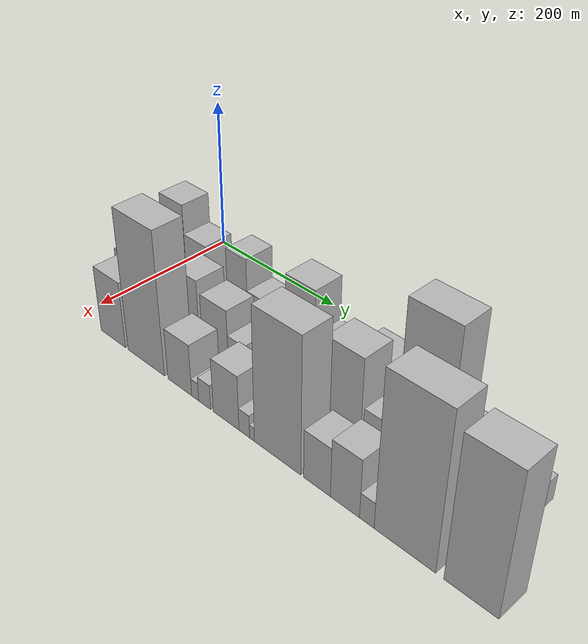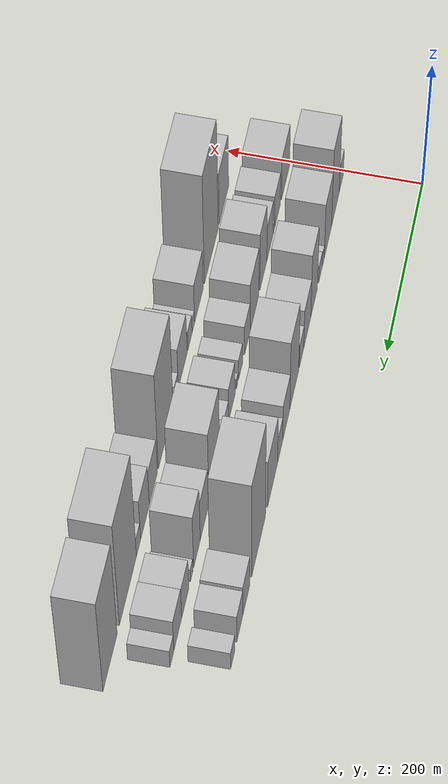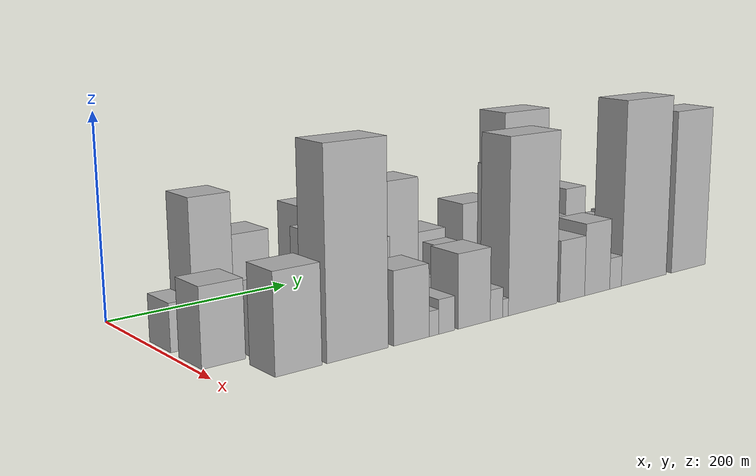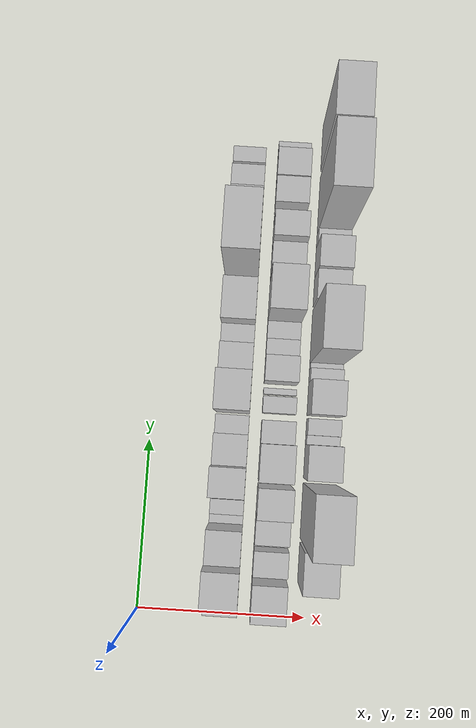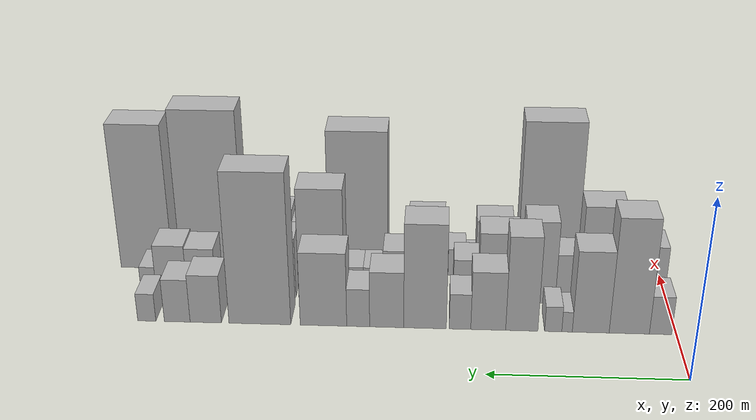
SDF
<sdf version="1.6">
 <world name="default">
  <model name="building_18">
   <static>1</static>
   <pose>100.0000 16.7724 0 0.000000 0.000000 0.000000</pose>
   <link name="link">
    <pose>0 0 22.50 0 0 0</pose>
    <collision name="collision"><geometry><box><size>40.0000 22.9341 45.0000</size></box></geometry></collision>
    <visual name="visual">
     <cast_shadows>0</cast_shadows>
     <geometry><box><size>40.0000 22.9341 45.0000</size></box></geometry>
     <material>
      <script>
       <uri>model://HANNAS_wall/materials/scripts</uri>
       <uri>model://HANNAS_wall/materials/textures</uri>
       <name>vrc/HANNAS_wall</name>
      </script>
     </material>
    </visual>
   </link>
  </model>
  <model name="building_19">
   <static>1</static>
   <pose>100.0000 48.9678 0 0.000000 0.000000 0.000000</pose>
   <link name="link">
    <pose>0 0 67.50 0 0 0</pose>
    <collision name="collision"><geometry><box><size>40.0000 41.4567 135.0000</size></box></geometry></collision>
    <visual name="visual">
     <cast_shadows>0</cast_shadows>
     <geometry><box><size>40.0000 41.4567 135.0000</size></box></geometry>
     <material>
      <script>
       <uri>model://HANNAS_wall/materials/scripts</uri>
       <uri>model://HANNAS_wall/materials/textures</uri>
       <name>vrc/HANNAS_wall</name>
      </script>
     </material>
    </visual>
   </link>
  </model>
  <model name="building_20">
   <static>1</static>
   <pose>100.0000 88.7517 0 0.000000 0.000000 0.000000</pose>
   <link name="link">
    <pose>0 0 48.00 0 0 0</pose>
    <collision name="collision"><geometry><box><size>40.0000 38.1110 96.0000</size></box></geometry></collision>
    <visual name="visual">
     <cast_shadows>0</cast_shadows>
     <geometry><box><size>40.0000 38.1110 96.0000</size></box></geometry>
     <material>
      <script>
       <uri>model://HANNAS_wall/materials/scripts</uri>
       <uri>model://HANNAS_wall/materials/textures</uri>
       <name>vrc/HANNAS_wall</name>
      </script>
     </material>
    </visual>
   </link>
  </model>
  <model name="building_21">
   <static>1</static>
   <pose>100.0000 113.2145 0 0.000000 0.000000 0.000000</pose>
   <link name="link">
    <pose>0 0 12.00 0 0 0</pose>
    <collision name="collision"><geometry><box><size>40.0000 10.8146 24.0000</size></box></geometry></collision>
    <visual name="visual">
     <cast_shadows>0</cast_shadows>
     <geometry><box><size>40.0000 10.8146 24.0000</size></box></geometry>
     <material>
      <script>
       <uri>model://HANNAS_wall/materials/scripts</uri>
       <uri>model://HANNAS_wall/materials/textures</uri>
       <name>vrc/HANNAS_wall</name>
      </script>
     </material>
    </visual>
   </link>
  </model>
  <model name="building_22">
   <static>1</static>
   <pose>100.0000 127.5079 0 0.000000 0.000000 0.000000</pose>
   <link name="link">
    <pose>0 0 15.00 0 0 0</pose>
    <collision name="collision"><geometry><box><size>40.0000 17.7722 30.0000</size></box></geometry></collision>
    <visual name="visual">
     <cast_shadows>0</cast_shadows>
     <geometry><box><size>40.0000 17.7722 30.0000</size></box></geometry>
     <material>
      <script>
       <uri>model://HANNAS_wall/materials/scripts</uri>
       <uri>model://HANNAS_wall/materials/textures</uri>
       <name>vrc/HANNAS_wall</name>
      </script>
     </material>
    </visual>
   </link>
  </model>
  <model name="building_23">
   <static>1</static>
   <pose>100.0000 160.1324 0 0.000000 0.000000 0.000000</pose>
   <link name="link">
    <pose>0 0 55.50 0 0 0</pose>
    <collision name="collision"><geometry><box><size>40.0000 33.4768 111.0000</size></box></geometry></collision>
    <visual name="visual">
     <cast_shadows>0</cast_shadows>
     <geometry><box><size>40.0000 33.4768 111.0000</size></box></geometry>
     <material>
      <script>
       <uri>model://HANNAS_wall/materials/scripts</uri>
       <uri>model://HANNAS_wall/materials/textures</uri>
       <name>vrc/HANNAS_wall</name>
      </script>
     </material>
    </visual>
   </link>
  </model>
  <model name="building_24">
   <static>1</static>
   <pose>100.0000 195.0404 0 0.000000 0.000000 0.000000</pose>
   <link name="link">
    <pose>0 0 34.50 0 0 0</pose>
    <collision name="collision"><geometry><box><size>40.0000 36.3392 69.0000</size></box></geometry></collision>
    <visual name="visual">
     <cast_shadows>0</cast_shadows>
     <geometry><box><size>40.0000 36.3392 69.0000</size></box></geometry>
     <material>
      <script>
       <uri>model://HANNAS_wall/materials/scripts</uri>
       <uri>model://HANNAS_wall/materials/textures</uri>
       <name>vrc/HANNAS_wall</name>
      </script>
     </material>
    </visual>
   </link>
  </model>
  <model name="building_25">
   <static>1</static>
   <pose>100.0000 224.4524 0 0.000000 0.000000 0.000000</pose>
   <link name="link">
    <pose>0 0 21.00 0 0 0</pose>
    <collision name="collision"><geometry><box><size>40.0000 22.4849 42.0000</size></box></geometry></collision>
    <visual name="visual">
     <cast_shadows>0</cast_shadows>
     <geometry><box><size>40.0000 22.4849 42.0000</size></box></geometry>
     <material>
      <script>
       <uri>model://HANNAS_wall/materials/scripts</uri>
       <uri>model://HANNAS_wall/materials/textures</uri>
       <name>vrc/HANNAS_wall</name>
      </script>
     </material>
    </visual>
   </link>
  </model>
  <model name="building_26">
   <static>1</static>
   <pose>100.0000 260.9989 0 0.000000 0.000000 0.000000</pose>
   <link name="link">
    <pose>0 0 61.50 0 0 0</pose>
    <collision name="collision"><geometry><box><size>40.0000 44.6081 123.0000</size></box></geometry></collision>
    <visual name="visual">
     <cast_shadows>0</cast_shadows>
     <geometry><box><size>40.0000 44.6081 123.0000</size></box></geometry>
     <material>
      <script>
       <uri>model://HANNAS_wall/materials/scripts</uri>
       <uri>model://HANNAS_wall/materials/textures</uri>
       <name>vrc/HANNAS_wall</name>
      </script>
     </material>
    </visual>
   </link>
  </model>
  <model name="building_27">
   <static>1</static>
   <pose>100.0000 301.1546 0 0.000000 0.000000 0.000000</pose>
   <link name="link">
    <pose>0 0 33.00 0 0 0</pose>
    <collision name="collision"><geometry><box><size>40.0000 35.7034 66.0000</size></box></geometry></collision>
    <visual name="visual">
     <cast_shadows>0</cast_shadows>
     <geometry><box><size>40.0000 35.7034 66.0000</size></box></geometry>
     <material>
      <script>
       <uri>model://HANNAS_wall/materials/scripts</uri>
       <uri>model://HANNAS_wall/materials/textures</uri>
       <name>vrc/HANNAS_wall</name>
      </script>
     </material>
    </visual>
   </link>
  </model>
  <model name="building_28">
   <static>1</static>
   <pose>100.0000 331.0335 0 0.000000 0.000000 0.000000</pose>
   <link name="link">
    <pose>0 0 22.50 0 0 0</pose>
    <collision name="collision"><geometry><box><size>40.0000 24.0544 45.0000</size></box></geometry></collision>
    <visual name="visual">
     <cast_shadows>0</cast_shadows>
     <geometry><box><size>40.0000 24.0544 45.0000</size></box></geometry>
     <material>
      <script>
       <uri>model://HANNAS_wall/materials/scripts</uri>
       <uri>model://HANNAS_wall/materials/textures</uri>
       <name>vrc/HANNAS_wall</name>
      </script>
     </material>
    </visual>
   </link>
  </model>
  <model name="building_29">
   <static>1</static>
   <pose>100.0000 367.5240 0 0.000000 0.000000 0.000000</pose>
   <link name="link">
    <pose>0 0 43.50 0 0 0</pose>
    <collision name="collision"><geometry><box><size>40.0000 48.9265 87.0000</size></box></geometry></collision>
    <visual name="visual">
     <cast_shadows>0</cast_shadows>
     <geometry><box><size>40.0000 48.9265 87.0000</size></box></geometry>
     <material>
      <script>
       <uri>model://HANNAS_wall/materials/scripts</uri>
       <uri>model://HANNAS_wall/materials/textures</uri>
       <name>vrc/HANNAS_wall</name>
      </script>
     </material>
    </visual>
   </link>
  </model>
  <model name="building_30">
   <static>1</static>
   <pose>100.0000 434.6717 0 0.000000 0.000000 0.000000</pose>
   <link name="link">
    <pose>0 0 88.50 0 0 0</pose>
    <collision name="collision"><geometry><box><size>40.0000 65.3691 177.0000</size></box></geometry></collision>
    <visual name="visual">
     <cast_shadows>0</cast_shadows>
     <geometry><box><size>40.0000 65.3691 177.0000</size></box></geometry>
     <material>
      <script>
       <uri>model://HANNAS_wall/materials/scripts</uri>
       <uri>model://HANNAS_wall/materials/textures</uri>
       <name>vrc/HANNAS_wall</name>
      </script>
     </material>
    </visual>
   </link>
  </model>
  <model name="building_31">
   <static>1</static>
   <pose>100.0000 491.9716 0 0.000000 0.000000 0.000000</pose>
   <link name="link">
    <pose>0 0 28.50 0 0 0</pose>
    <collision name="collision"><geometry><box><size>40.0000 33.2307 57.0000</size></box></geometry></collision>
    <visual name="visual">
     <cast_shadows>0</cast_shadows>
     <geometry><box><size>40.0000 33.2307 57.0000</size></box></geometry>
     <material>
      <script>
       <uri>model://HANNAS_wall/materials/scripts</uri>
       <uri>model://HANNAS_wall/materials/textures</uri>
       <name>vrc/HANNAS_wall</name>
      </script>
     </material>
    </visual>
   </link>
  </model>
  <model name="building_32">
   <static>1</static>
   <pose>100.0000 522.3087 0 0.000000 0.000000 0.000000</pose>
   <link name="link">
    <pose>0 0 25.50 0 0 0</pose>
    <collision name="collision"><geometry><box><size>40.0000 27.4435 51.0000</size></box></geometry></collision>
    <visual name="visual">
     <cast_shadows>0</cast_shadows>
     <geometry><box><size>40.0000 27.4435 51.0000</size></box></geometry>
     <material>
      <script>
       <uri>model://HANNAS_wall/materials/scripts</uri>
       <uri>model://HANNAS_wall/materials/textures</uri>
       <name>vrc/HANNAS_wall</name>
      </script>
     </material>
    </visual>
   </link>
  </model>
  <model name="building_33">
   <static>1</static>
   <pose>100.0000 554.6886 0 0.000000 0.000000 0.000000</pose>
   <link name="link">
    <pose>0 0 16.50 0 0 0</pose>
    <collision name="collision"><geometry><box><size>40.0000 19.3164 33.0000</size></box></geometry></collision>
    <visual name="visual">
     <cast_shadows>0</cast_shadows>
     <geometry><box><size>40.0000 19.3164 33.0000</size></box></geometry>
     <material>
      <script>
       <uri>model://HANNAS_wall/materials/scripts</uri>
       <uri>model://HANNAS_wall/materials/textures</uri>
       <name>vrc/HANNAS_wall</name>
      </script>
     </material>
    </visual>
   </link>
  </model>
  <model name="building_49">
   <static>1</static>
   <pose>155.0000 26.4086 0 0.000000 0.000000 0.000000</pose>
   <link name="link">
    <pose>0 0 36.00 0 0 0</pose>
    <collision name="collision"><geometry><box><size>40.0000 42.3562 72.0000</size></box></geometry></collision>
    <visual name="visual">
     <cast_shadows>0</cast_shadows>
     <geometry><box><size>40.0000 42.3562 72.0000</size></box></geometry>
     <material>
      <script>
       <uri>model://HANNAS_wall/materials/scripts</uri>
       <uri>model://HANNAS_wall/materials/textures</uri>
       <name>vrc/HANNAS_wall</name>
      </script>
     </material>
    </visual>
   </link>
  </model>
  <model name="building_50">
   <static>1</static>
   <pose>155.0000 68.1964 0 0.000000 0.000000 0.000000</pose>
   <link name="link">
    <pose>0 0 28.50 0 0 0</pose>
    <collision name="collision"><geometry><box><size>40.0000 29.2193 57.0000</size></box></geometry></collision>
    <visual name="visual">
     <cast_shadows>0</cast_shadows>
     <geometry><box><size>40.0000 29.2193 57.0000</size></box></geometry>
     <material>
      <script>
       <uri>model://HANNAS_wall/materials/scripts</uri>
       <uri>model://HANNAS_wall/materials/textures</uri>
       <name>vrc/HANNAS_wall</name>
      </script>
     </material>
    </visual>
   </link>
  </model>
  <model name="building_51">
   <static>1</static>
   <pose>155.0000 86.2886 0 0.000000 0.000000 0.000000</pose>
   <link name="link">
    <pose>0 0 7.50 0 0 0</pose>
    <collision name="collision"><geometry><box><size>40.0000 6.9651 15.0000</size></box></geometry></collision>
    <visual name="visual">
     <cast_shadows>0</cast_shadows>
     <geometry><box><size>40.0000 6.9651 15.0000</size></box></geometry>
     <material>
      <script>
       <uri>model://HANNAS_wall/materials/scripts</uri>
       <uri>model://HANNAS_wall/materials/textures</uri>
       <name>vrc/HANNAS_wall</name>
      </script>
     </material>
    </visual>
   </link>
  </model>
  <model name="building_52">
   <static>1</static>
   <pose>155.0000 105.5887 0 0.000000 0.000000 0.000000</pose>
   <link name="link">
    <pose>0 0 30.00 0 0 0</pose>
    <collision name="collision"><geometry><box><size>40.0000 31.6352 60.0000</size></box></geometry></collision>
    <visual name="visual">
     <cast_shadows>0</cast_shadows>
     <geometry><box><size>40.0000 31.6352 60.0000</size></box></geometry>
     <material>
      <script>
       <uri>model://HANNAS_wall/materials/scripts</uri>
       <uri>model://HANNAS_wall/materials/textures</uri>
       <name>vrc/HANNAS_wall</name>
      </script>
     </material>
    </visual>
   </link>
  </model>
  <model name="building_53">
   <static>1</static>
   <pose>155.0000 138.8048 0 0.000000 0.000000 0.000000</pose>
   <link name="link">
    <pose>0 0 49.50 0 0 0</pose>
    <collision name="collision"><geometry><box><size>40.0000 34.7970 99.0000</size></box></geometry></collision>
    <visual name="visual">
     <cast_shadows>0</cast_shadows>
     <geometry><box><size>40.0000 34.7970 99.0000</size></box></geometry>
     <material>
      <script>
       <uri>model://HANNAS_wall/materials/scripts</uri>
       <uri>model://HANNAS_wall/materials/textures</uri>
       <name>vrc/HANNAS_wall</name>
      </script>
     </material>
    </visual>
   </link>
  </model>
  <model name="building_54">
   <static>1</static>
   <pose>155.0000 182.8524 0 0.000000 0.000000 0.000000</pose>
   <link name="link">
    <pose>0 0 42.00 0 0 0</pose>
    <collision name="collision"><geometry><box><size>40.0000 43.2982 84.0000</size></box></geometry></collision>
    <visual name="visual">
     <cast_shadows>0</cast_shadows>
     <geometry><box><size>40.0000 43.2982 84.0000</size></box></geometry>
     <material>
      <script>
       <uri>model://HANNAS_wall/materials/scripts</uri>
       <uri>model://HANNAS_wall/materials/textures</uri>
       <name>vrc/HANNAS_wall</name>
      </script>
     </material>
    </visual>
   </link>
  </model>
  <model name="building_55">
   <static>1</static>
   <pose>155.0000 218.1097 0 0.000000 0.000000 0.000000</pose>
   <link name="link">
    <pose>0 0 25.50 0 0 0</pose>
    <collision name="collision"><geometry><box><size>40.0000 27.2165 51.0000</size></box></geometry></collision>
    <visual name="visual">
     <cast_shadows>0</cast_shadows>
     <geometry><box><size>40.0000 27.2165 51.0000</size></box></geometry>
     <material>
      <script>
       <uri>model://HANNAS_wall/materials/scripts</uri>
       <uri>model://HANNAS_wall/materials/textures</uri>
       <name>vrc/HANNAS_wall</name>
      </script>
     </material>
    </visual>
   </link>
  </model>
  <model name="building_56">
   <static>1</static>
   <pose>155.0000 250.6792 0 0.000000 0.000000 0.000000</pose>
   <link name="link">
    <pose>0 0 18.00 0 0 0</pose>
    <collision name="collision"><geometry><box><size>40.0000 19.9224 36.0000</size></box></geometry></collision>
    <visual name="visual">
     <cast_shadows>0</cast_shadows>
     <geometry><box><size>40.0000 19.9224 36.0000</size></box></geometry>
     <material>
      <script>
       <uri>model://HANNAS_wall/materials/scripts</uri>
       <uri>model://HANNAS_wall/materials/textures</uri>
       <name>vrc/HANNAS_wall</name>
      </script>
     </material>
    </visual>
   </link>
  </model>
  <model name="building_57">
   <static>1</static>
   <pose>155.0000 267.3925 0 0.000000 0.000000 0.000000</pose>
   <link name="link">
    <pose>0 0 9.00 0 0 0</pose>
    <collision name="collision"><geometry><box><size>40.0000 7.5042 18.0000</size></box></geometry></collision>
    <visual name="visual">
     <cast_shadows>0</cast_shadows>
     <geometry><box><size>40.0000 7.5042 18.0000</size></box></geometry>
     <material>
      <script>
       <uri>model://HANNAS_wall/materials/scripts</uri>
       <uri>model://HANNAS_wall/materials/textures</uri>
       <name>vrc/HANNAS_wall</name>
      </script>
     </material>
    </visual>
   </link>
  </model>
  <model name="building_58">
   <static>1</static>
   <pose>155.0000 292.4423 0 0.000000 0.000000 0.000000</pose>
   <link name="link">
    <pose>0 0 30.00 0 0 0</pose>
    <collision name="collision"><geometry><box><size>40.0000 30.5955 60.0000</size></box></geometry></collision>
    <visual name="visual">
     <cast_shadows>0</cast_shadows>
     <geometry><box><size>40.0000 30.5955 60.0000</size></box></geometry>
     <material>
      <script>
       <uri>model://HANNAS_wall/materials/scripts</uri>
       <uri>model://HANNAS_wall/materials/textures</uri>
       <name>vrc/HANNAS_wall</name>
      </script>
     </material>
    </visual>
   </link>
  </model>
  <model name="building_59">
   <static>1</static>
   <pose>155.0000 318.4146 0 0.000000 0.000000 0.000000</pose>
   <link name="link">
    <pose>0 0 19.50 0 0 0</pose>
    <collision name="collision"><geometry><box><size>40.0000 21.3492 39.0000</size></box></geometry></collision>
    <visual name="visual">
     <cast_shadows>0</cast_shadows>
     <geometry><box><size>40.0000 21.3492 39.0000</size></box></geometry>
     <material>
      <script>
       <uri>model://HANNAS_wall/materials/scripts</uri>
       <uri>model://HANNAS_wall/materials/textures</uri>
       <name>vrc/HANNAS_wall</name>
      </script>
     </material>
    </visual>
   </link>
  </model>
  <model name="building_60">
   <static>1</static>
   <pose>155.0000 339.6302 0 0.000000 0.000000 0.000000</pose>
   <link name="link">
    <pose>0 0 19.50 0 0 0</pose>
    <collision name="collision"><geometry><box><size>40.0000 21.0819 39.0000</size></box></geometry></collision>
    <visual name="visual">
     <cast_shadows>0</cast_shadows>
     <geometry><box><size>40.0000 21.0819 39.0000</size></box></geometry>
     <material>
      <script>
       <uri>model://HANNAS_wall/materials/scripts</uri>
       <uri>model://HANNAS_wall/materials/textures</uri>
       <name>vrc/HANNAS_wall</name>
      </script>
     </material>
    </visual>
   </link>
  </model>
  <model name="building_61">
   <static>1</static>
   <pose>155.0000 374.9569 0 0.000000 0.000000 0.000000</pose>
   <link name="link">
    <pose>0 0 66.00 0 0 0</pose>
    <collision name="collision"><geometry><box><size>40.0000 49.5716 132.0000</size></box></geometry></collision>
    <visual name="visual">
     <cast_shadows>0</cast_shadows>
     <geometry><box><size>40.0000 49.5716 132.0000</size></box></geometry>
     <material>
      <script>
       <uri>model://HANNAS_wall/materials/scripts</uri>
       <uri>model://HANNAS_wall/materials/textures</uri>
       <name>vrc/HANNAS_wall</name>
      </script>
     </material>
    </visual>
   </link>
  </model>
  <model name="building_62">
   <static>1</static>
   <pose>155.0000 420.9416 0 0.000000 0.000000 0.000000</pose>
   <link name="link">
    <pose>0 0 36.00 0 0 0</pose>
    <collision name="collision"><geometry><box><size>40.0000 36.3977 72.0000</size></box></geometry></collision>
    <visual name="visual">
     <cast_shadows>0</cast_shadows>
     <geometry><box><size>40.0000 36.3977 72.0000</size></box></geometry>
     <material>
      <script>
       <uri>model://HANNAS_wall/materials/scripts</uri>
       <uri>model://HANNAS_wall/materials/textures</uri>
       <name>vrc/HANNAS_wall</name>
      </script>
     </material>
    </visual>
   </link>
  </model>
  <model name="building_63">
   <static>1</static>
   <pose>155.0000 454.0778 0 0.000000 0.000000 0.000000</pose>
   <link name="link">
    <pose>0 0 49.50 0 0 0</pose>
    <collision name="collision"><geometry><box><size>40.0000 29.8747 99.0000</size></box></geometry></collision>
    <visual name="visual">
     <cast_shadows>0</cast_shadows>
     <geometry><box><size>40.0000 29.8747 99.0000</size></box></geometry>
     <material>
      <script>
       <uri>model://HANNAS_wall/materials/scripts</uri>
       <uri>model://HANNAS_wall/materials/textures</uri>
       <name>vrc/HANNAS_wall</name>
      </script>
     </material>
    </visual>
   </link>
  </model>
  <model name="building_64">
   <static>1</static>
   <pose>155.0000 477.8765 0 0.000000 0.000000 0.000000</pose>
   <link name="link">
    <pose>0 0 12.00 0 0 0</pose>
    <collision name="collision"><geometry><box><size>40.0000 11.7227 24.0000</size></box></geometry></collision>
    <visual name="visual">
     <cast_shadows>0</cast_shadows>
     <geometry><box><size>40.0000 11.7227 24.0000</size></box></geometry>
     <material>
      <script>
       <uri>model://HANNAS_wall/materials/scripts</uri>
       <uri>model://HANNAS_wall/materials/textures</uri>
       <name>vrc/HANNAS_wall</name>
      </script>
     </material>
    </visual>
   </link>
  </model>
  <model name="building_65">
   <static>1</static>
   <pose>155.0000 506.6784 0 0.000000 0.000000 0.000000</pose>
   <link name="link">
    <pose>0 0 28.50 0 0 0</pose>
    <collision name="collision"><geometry><box><size>40.0000 31.8812 57.0000</size></box></geometry></collision>
    <visual name="visual">
     <cast_shadows>0</cast_shadows>
     <geometry><box><size>40.0000 31.8812 57.0000</size></box></geometry>
     <material>
      <script>
       <uri>model://HANNAS_wall/materials/scripts</uri>
       <uri>model://HANNAS_wall/materials/textures</uri>
       <name>vrc/HANNAS_wall</name>
      </script>
     </material>
    </visual>
   </link>
  </model>
  <model name="building_66">
   <static>1</static>
   <pose>155.0000 539.6559 0 0.000000 0.000000 0.000000</pose>
   <link name="link">
    <pose>0 0 30.00 0 0 0</pose>
    <collision name="collision"><geometry><box><size>40.0000 34.0738 60.0000</size></box></geometry></collision>
    <visual name="visual">
     <cast_shadows>0</cast_shadows>
     <geometry><box><size>40.0000 34.0738 60.0000</size></box></geometry>
     <material>
      <script>
       <uri>model://HANNAS_wall/materials/scripts</uri>
       <uri>model://HANNAS_wall/materials/textures</uri>
       <name>vrc/HANNAS_wall</name>
      </script>
     </material>
    </visual>
   </link>
  </model>
  <model name="building_67">
   <static>1</static>
   <pose>155.0000 565.0860 0 0.000000 0.000000 0.000000</pose>
   <link name="link">
    <pose>0 0 16.50 0 0 0</pose>
    <collision name="collision"><geometry><box><size>40.0000 16.7863 33.0000</size></box></geometry></collision>
    <visual name="visual">
     <cast_shadows>0</cast_shadows>
     <geometry><box><size>40.0000 16.7863 33.0000</size></box></geometry>
     <material>
      <script>
       <uri>model://HANNAS_wall/materials/scripts</uri>
       <uri>model://HANNAS_wall/materials/textures</uri>
       <name>vrc/HANNAS_wall</name>
      </script>
     </material>
    </visual>
   </link>
  </model>
  <model name="building_85">
   <static>1</static>
   <pose>210.0000 65.7581 0 0.000000 0.000000 0.000000</pose>
   <link name="link">
    <pose>0 0 45.00 0 0 0</pose>
    <collision name="collision"><geometry><box><size>40.0000 46.5386 90.0000</size></box></geometry></collision>
    <visual name="visual">
     <cast_shadows>0</cast_shadows>
     <geometry><box><size>40.0000 46.5386 90.0000</size></box></geometry>
     <material>
      <script>
       <uri>model://HANNAS_wall/materials/scripts</uri>
       <uri>model://HANNAS_wall/materials/textures</uri>
       <name>vrc/HANNAS_wall</name>
      </script>
     </material>
    </visual>
   </link>
  </model>
  <model name="building_86">
   <static>1</static>
   <pose>210.0000 126.9262 0 0.000000 0.000000 0.000000</pose>
   <link name="link">
    <pose>0 0 94.50 0 0 0</pose>
    <collision name="collision"><geometry><box><size>40.0000 65.7975 189.0000</size></box></geometry></collision>
    <visual name="visual">
     <cast_shadows>0</cast_shadows>
     <geometry><box><size>40.0000 65.7975 189.0000</size></box></geometry>
     <material>
      <script>
       <uri>model://HANNAS_wall/materials/scripts</uri>
       <uri>model://HANNAS_wall/materials/textures</uri>
       <name>vrc/HANNAS_wall</name>
      </script>
     </material>
    </visual>
   </link>
  </model>
  <model name="building_87">
   <static>1</static>
   <pose>210.0000 186.1199 0 0.000000 0.000000 0.000000</pose>
   <link name="link">
    <pose>0 0 34.50 0 0 0</pose>
    <collision name="collision"><geometry><box><size>40.0000 40.5899 69.0000</size></box></geometry></collision>
    <visual name="visual">
     <cast_shadows>0</cast_shadows>
     <geometry><box><size>40.0000 40.5899 69.0000</size></box></geometry>
     <material>
      <script>
       <uri>model://HANNAS_wall/materials/scripts</uri>
       <uri>model://HANNAS_wall/materials/textures</uri>
       <name>vrc/HANNAS_wall</name>
      </script>
     </material>
    </visual>
   </link>
  </model>
  <model name="building_88">
   <static>1</static>
   <pose>210.0000 212.0496 0 0.000000 0.000000 0.000000</pose>
   <link name="link">
    <pose>0 0 12.00 0 0 0</pose>
    <collision name="collision"><geometry><box><size>40.0000 11.2696 24.0000</size></box></geometry></collision>
    <visual name="visual">
     <cast_shadows>0</cast_shadows>
     <geometry><box><size>40.0000 11.2696 24.0000</size></box></geometry>
     <material>
      <script>
       <uri>model://HANNAS_wall/materials/scripts</uri>
       <uri>model://HANNAS_wall/materials/textures</uri>
       <name>vrc/HANNAS_wall</name>
      </script>
     </material>
    </visual>
   </link>
  </model>
  <model name="building_89">
   <static>1</static>
   <pose>210.0000 227.5335 0 0.000000 0.000000 0.000000</pose>
   <link name="link">
    <pose>0 0 16.50 0 0 0</pose>
    <collision name="collision"><geometry><box><size>40.0000 19.6982 33.0000</size></box></geometry></collision>
    <visual name="visual">
     <cast_shadows>0</cast_shadows>
     <geometry><box><size>40.0000 19.6982 33.0000</size></box></geometry>
     <material>
      <script>
       <uri>model://HANNAS_wall/materials/scripts</uri>
       <uri>model://HANNAS_wall/materials/textures</uri>
       <name>vrc/HANNAS_wall</name>
      </script>
     </material>
    </visual>
   </link>
  </model>
  <model name="building_90">
   <static>1</static>
   <pose>210.0000 261.6044 0 0.000000 0.000000 0.000000</pose>
   <link name="link">
    <pose>0 0 36.00 0 0 0</pose>
    <collision name="collision"><geometry><box><size>40.0000 40.4435 72.0000</size></box></geometry></collision>
    <visual name="visual">
     <cast_shadows>0</cast_shadows>
     <geometry><box><size>40.0000 40.4435 72.0000</size></box></geometry>
     <material>
      <script>
       <uri>model://HANNAS_wall/materials/scripts</uri>
       <uri>model://HANNAS_wall/materials/textures</uri>
       <name>vrc/HANNAS_wall</name>
      </script>
     </material>
    </visual>
   </link>
  </model>
  <model name="building_91">
   <static>1</static>
   <pose>210.0000 289.9163 0 0.000000 0.000000 0.000000</pose>
   <link name="link">
    <pose>0 0 15.00 0 0 0</pose>
    <collision name="collision"><geometry><box><size>40.0000 16.1804 30.0000</size></box></geometry></collision>
    <visual name="visual">
     <cast_shadows>0</cast_shadows>
     <geometry><box><size>40.0000 16.1804 30.0000</size></box></geometry>
     <material>
      <script>
       <uri>model://HANNAS_wall/materials/scripts</uri>
       <uri>model://HANNAS_wall/materials/textures</uri>
       <name>vrc/HANNAS_wall</name>
      </script>
     </material>
    </visual>
   </link>
  </model>
  <model name="building_92">
   <static>1</static>
   <pose>210.0000 301.6715 0 0.000000 0.000000 0.000000</pose>
   <link name="link">
    <pose>0 0 9.00 0 0 0</pose>
    <collision name="collision"><geometry><box><size>40.0000 7.3300 18.0000</size></box></geometry></collision>
    <visual name="visual">
     <cast_shadows>0</cast_shadows>
     <geometry><box><size>40.0000 7.3300 18.0000</size></box></geometry>
     <material>
      <script>
       <uri>model://HANNAS_wall/materials/scripts</uri>
       <uri>model://HANNAS_wall/materials/textures</uri>
       <name>vrc/HANNAS_wall</name>
      </script>
     </material>
    </visual>
   </link>
  </model>
  <model name="building_93">
   <static>1</static>
   <pose>210.0000 338.6917 0 0.000000 0.000000 0.000000</pose>
   <link name="link">
    <pose>0 0 87.00 0 0 0</pose>
    <collision name="collision"><geometry><box><size>40.0000 66.7103 174.0000</size></box></geometry></collision>
    <visual name="visual">
     <cast_shadows>0</cast_shadows>
     <geometry><box><size>40.0000 66.7103 174.0000</size></box></geometry>
     <material>
      <script>
       <uri>model://HANNAS_wall/materials/scripts</uri>
       <uri>model://HANNAS_wall/materials/textures</uri>
       <name>vrc/HANNAS_wall</name>
      </script>
     </material>
    </visual>
   </link>
  </model>
  <model name="building_94">
   <static>1</static>
   <pose>210.0000 394.0798 0 0.000000 0.000000 0.000000</pose>
   <link name="link">
    <pose>0 0 31.50 0 0 0</pose>
    <collision name="collision"><geometry><box><size>40.0000 36.0657 63.0000</size></box></geometry></collision>
    <visual name="visual">
     <cast_shadows>0</cast_shadows>
     <geometry><box><size>40.0000 36.0657 63.0000</size></box></geometry>
     <material>
      <script>
       <uri>model://HANNAS_wall/materials/scripts</uri>
       <uri>model://HANNAS_wall/materials/textures</uri>
       <name>vrc/HANNAS_wall</name>
      </script>
     </material>
    </visual>
   </link>
  </model>
  <model name="building_95">
   <static>1</static>
   <pose>210.0000 431.0149 0 0.000000 0.000000 0.000000</pose>
   <link name="link">
    <pose>0 0 37.50 0 0 0</pose>
    <collision name="collision"><geometry><box><size>40.0000 37.8046 75.0000</size></box></geometry></collision>
    <visual name="visual">
     <cast_shadows>0</cast_shadows>
     <geometry><box><size>40.0000 37.8046 75.0000</size></box></geometry>
     <material>
      <script>
       <uri>model://HANNAS_wall/materials/scripts</uri>
       <uri>model://HANNAS_wall/materials/textures</uri>
       <name>vrc/HANNAS_wall</name>
      </script>
     </material>
    </visual>
   </link>
  </model>
  <model name="building_96">
   <static>1</static>
   <pose>210.0000 459.0206 0 0.000000 0.000000 0.000000</pose>
   <link name="link">
    <pose>0 0 16.50 0 0 0</pose>
    <collision name="collision"><geometry><box><size>40.0000 18.2067 33.0000</size></box></geometry></collision>
    <visual name="visual">
     <cast_shadows>0</cast_shadows>
     <geometry><box><size>40.0000 18.2067 33.0000</size></box></geometry>
     <material>
      <script>
       <uri>model://HANNAS_wall/materials/scripts</uri>
       <uri>model://HANNAS_wall/materials/textures</uri>
       <name>vrc/HANNAS_wall</name>
      </script>
     </material>
    </visual>
   </link>
  </model>
  <model name="building_97">
   <static>1</static>
   <pose>210.0000 504.5978 0 0.000000 0.000000 0.000000</pose>
   <link name="link">
    <pose>0 0 97.50 0 0 0</pose>
    <collision name="collision"><geometry><box><size>40.0000 72.9476 195.0000</size></box></geometry></collision>
    <visual name="visual">
     <cast_shadows>0</cast_shadows>
     <geometry><box><size>40.0000 72.9476 195.0000</size></box></geometry>
     <material>
      <script>
       <uri>model://HANNAS_wall/materials/scripts</uri>
       <uri>model://HANNAS_wall/materials/textures</uri>
       <name>vrc/HANNAS_wall</name>
      </script>
     </material>
    </visual>
   </link>
  </model>
  <model name="building_98">
   <static>1</static>
   <pose>210.0000 579.8008 0 0.000000 0.000000 0.000000</pose>
   <link name="link">
    <pose>0 0 88.50 0 0 0</pose>
    <collision name="collision"><geometry><box><size>40.0000 59.4585 177.0000</size></box></geometry></collision>
    <visual name="visual">
     <cast_shadows>0</cast_shadows>
     <geometry><box><size>40.0000 59.4585 177.0000</size></box></geometry>
     <material>
      <script>
       <uri>model://HANNAS_wall/materials/scripts</uri>
       <uri>model://HANNAS_wall/materials/textures</uri>
       <name>vrc/HANNAS_wall</name>
      </script>
     </material>
    </visual>
   </link>
  </model>
 </world>
</sdf>
